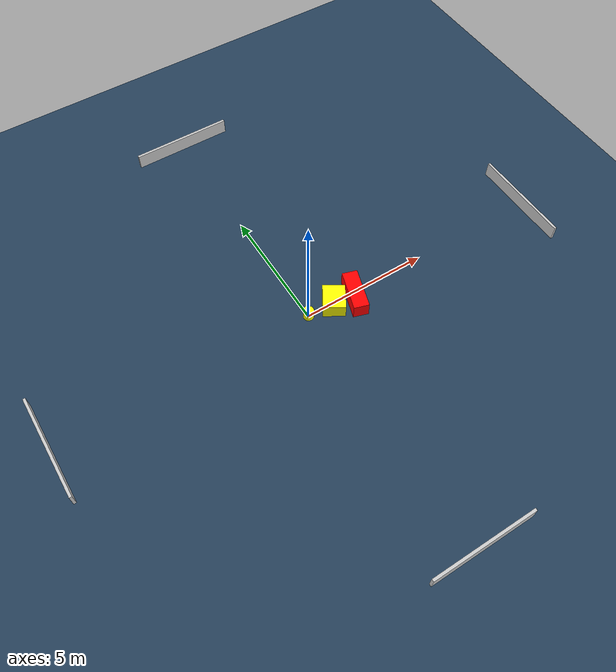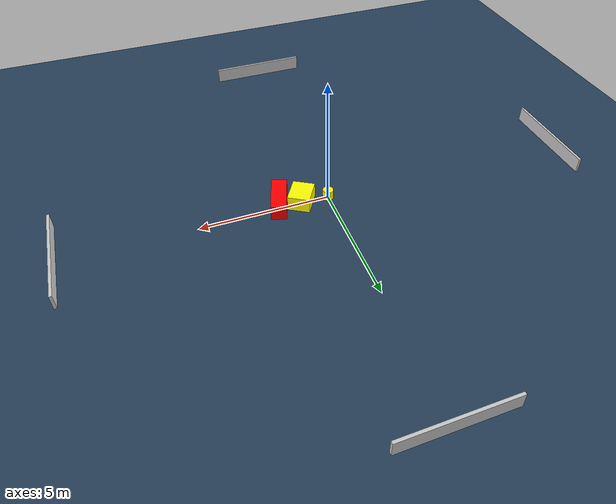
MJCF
<?xml version="1.0" ?>
<mujoco model="generated_environment">
  <option timestep="0.01" integrator="RK4" cone="elliptic"/>
  <default>
    <geom density="1"/>
  </default>
  <asset>
    <texture builtin="gradient" height="3072" name="skybox" rgb1="0.3 0.5 0.7" rgb2="0 0 0" type="skybox" width="512"/>
    <texture builtin="checker" height="300" name="groundplane" rgb1="0.2 0.3 0.4" rgb2="0.1 0.2 0.3" type="2d" width="300"/>
    <material name="groundplane" reflectance="0.2" texrepeat="5 5" texture="groundplane"/>
  </asset>
  <worldbody>
    <light dir="0 0 -1" directional="true" pos="0 0 1.5"/>
    <geom condim="3" friction="0.5 0.005 0.001" material="groundplane" name="floor" pos="0 0 0" size="0 0 0.05" type="plane"/>
    <body name="walls">
      <geom name="wall_1" condim="4" pos="-10.0 0.0 0.3" rgba="0.800000011920929 0.800000011920929 0.800000011920929 1.0" size="0.05 2.0 0.3" type="box"/>
      <geom name="wall_2" condim="4" pos="10.0 0.0 0.3" rgba="0.800000011920929 0.800000011920929 0.800000011920929 1.0" size="0.05 2.0 0.3" type="box"/>
      <geom name="wall_3" condim="4" pos="0.0 -10.0 0.3" rgba="0.800000011920929 0.800000011920929 0.800000011920929 1.0" size="2.0 0.05 0.3" type="box"/>
      <geom name="wall_4" condim="4" pos="0.0 10.0 0.3" rgba="0.800000011920929 0.800000011920929 0.800000011920929 1.0" size="2.0 0.05 0.3" type="box"/>
    </body>
    <body name="robot">
      <joint name="joint_x" type="slide" pos="0 0 0" axis="1 0 0"/>
      <joint name="joint_y" type="slide" pos="0 0 0" axis="0 1 0"/>
      <geom name="robot" type="cylinder" pos="0.0 0.0 0.2" size="0.2 0.2 0.0" mass="5.0" friction="1.0 0.005 0.0001" condim="4" rgba="1.0 1.0 0.0 1.0"/>
    </body>
    <body name="obstacle_1_movable">
      <geom name="obstacle_1_movable" condim="4" pos="1.0473160945840962 -0.07992307865495805 0.3" euler="0 0 148.755250551179" friction="0.0 0.005 0.001" rgba="1.0 1.0 0.0 1.0" size="0.4213684357822833 0.489455633359992 0.3" type="box" mass="0.1"/>
      <joint type="free"/>
    </body>
    <body name="obstacle_2_static">
      <geom name="obstacle_2_static" condim="4" pos="1.8804775056373235 -0.2346253050844017 0.3" euler="0 0 342.5647642670732" friction="0.0 0.005 0.001" rgba="1.0 0.0 0.0 1.0" size="0.2944672651009793 0.7910847215832391 0.3" type="box"/>
    </body>
  </worldbody>
  <actuator>
    <motor name="actuator_x" joint="joint_x" gear="1" ctrlrange="-1 1"/>
    <motor name="actuator_y" joint="joint_y" gear="1" ctrlrange="-1 1"/>
  </actuator>
</mujoco>
